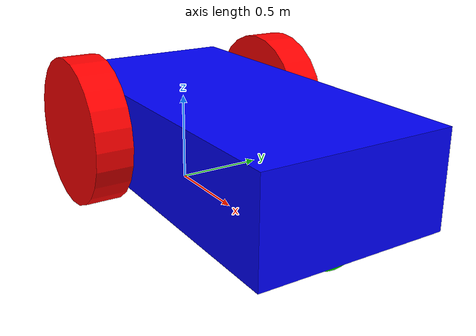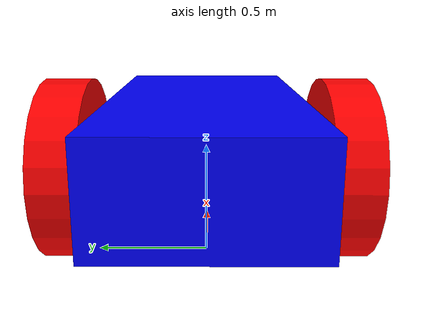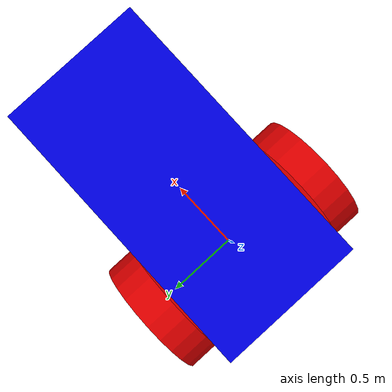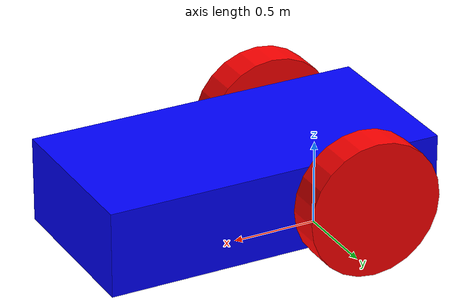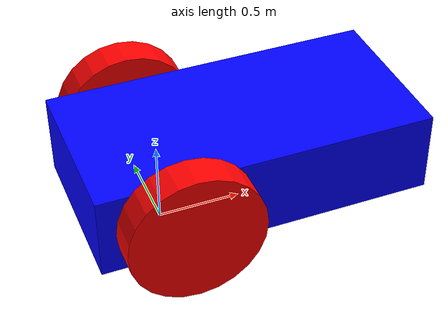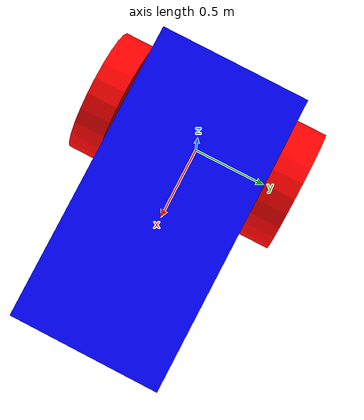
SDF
<?xml version="1.0" encoding='utf-8'?>
<sdf version="1.8">
    <model name="blue_wheel_bot">
        <pose>0 0 0 0 0 0</pose>
        <link name="base">
            <pose>0.5 0 0.4 0 0 0</pose>
            <inertial> <!-- modelin ataletini ve kütle bilgileri girilir -->
                <mass>1.14395</mass>
                <inertia>
                    <ixx>0.095329</ixx>
                    <ixy>0</ixy>
                    <ixz>0</ixz>
                    <iyy>0.381317</iyy>
                    <iyz>0</iyz>
                    <izz>0.476646</izz>
                </inertia>
            </inertial>
            <visual name='visual'>
                <geometry>
                    <box>
                        <size>2.0 1.0 0.5</size>
                    </box>
                </geometry>
                <material>
                    <ambient>0.0 0.0 1.0 1</ambient>
                    <diffuse>0.0 0.0 1.0 1</diffuse>
                    <specular>0.0 0.0 1.0 1</specular>
                </material>
            </visual>
            <collision name='collision'>
                <geometry>
                    <box>
                        <size>2.0 1.0 0.5</size>
                    </box>
                </geometry>
            </collision>
            <sensor name="vehicle_imu" type="imu">
                <always_on>1</always_on>
                <update_rate>100</update_rate>
                <visualize>true</visualize>
                <topic>imu</topic>
            </sensor>
            <sensor name='gpu_lidar' type='gpu_lidar'>"
                <pose>-0.5 0 0.5 0 0 0</pose>
                <topic>lidar</topic>
                <update_rate>10</update_rate>
                <ray>
                    <scan>
                        <horizontal>
                            <samples>160</samples>
                            <resolution>1</resolution>
                            <min_angle>-1.396263</min_angle>
                            <max_angle>1.396263</max_angle>
                        </horizontal>
                        <vertical>
                            <samples>1</samples>
                            <resolution>0.01</resolution>
                            <min_angle>0</min_angle>
                            <max_angle>0</max_angle>
                        </vertical>
                    </scan>
                    <range>
                        <min>0.02</min>
                        <max>5.0</max>
                        <resolution>0.01</resolution>
                    </range>
                </ray>
                <always_on>1</always_on>
                <visualize>true</visualize>
            </sensor>
        </link>

        <link name='left_wheel'>
            <pose relative_to="base">-0.5 0.6 0 -1.5707 0 0</pose>
            <inertial>
                <mass>1</mass>
                <inertia>
                    <ixx>0.043333</ixx>
                    <ixy>0</ixy>
                    <ixz>0</ixz>
                    <iyy>0.043333</iyy>
                    <iyz>0</iyz>
                    <izz>0.08</izz>
                </inertia>
            </inertial>
            <visual name='visual'>
                <geometry>
                    <cylinder>
                        <radius>0.4</radius>
                        <length>0.2</length>
                    </cylinder>
                </geometry>
                <material>
                    <ambient>1.0 0.0 0.0 1</ambient>
                    <diffuse>1.0 0.0 0.0 1</diffuse>
                    <specular>1.0 0.0 0.0 1</specular>
                </material>
            </visual>
            <collision name='collision'>
                <geometry>
                    <cylinder>
                        <radius>0.4</radius>
                        <length>0.2</length>
                    </cylinder>
                </geometry>
            </collision>
        </link>

        <link name='right_wheel'>
            <pose relative_to="base">-0.5 -0.6 0 -1.5707 0 0</pose> <!--angles are in radian-->
            <inertial>
                <mass>1</mass>
                <inertia>
                    <ixx>0.043333</ixx>
                    <ixy>0</ixy>
                    <ixz>0</ixz>
                    <iyy>0.043333</iyy>
                    <iyz>0</iyz>
                    <izz>0.08</izz>
                </inertia>
            </inertial>
            <visual name='visual'>
                <geometry>
                    <cylinder>
                        <radius>0.4</radius>
                        <length>0.2</length>
                    </cylinder>
                </geometry>
                <material>
                    <ambient>1.0 0.0 0.0 1</ambient>
                    <diffuse>1.0 0.0 0.0 1</diffuse>
                    <specular>1.0 0.0 0.0 1</specular>
                </material>
            </visual>
            <collision name='collision'>
                <geometry>
                    <cylinder>
                        <radius>0.4</radius>
                        <length>0.2</length>
                    </cylinder>
                </geometry>
            </collision>
        </link>

        <link name='caster'>
            <pose relative_to='base'>0.75 0 -0.2 0 0 0</pose>
            <inertial>
                <mass>1</mass>
                <inertia>
                    <ixx>0.016</ixx>
                    <ixy>0</ixy>
                    <ixz>0</ixz>
                    <iyy>0.016</iyy>
                    <iyz>0</iyz>
                    <izz>0.016</izz>
                </inertia>
            </inertial>
            <visual name='visual'>
                <geometry>
                    <sphere>
                        <radius>0.2</radius>
                    </sphere>
                </geometry>
                <material>
                    <ambient>0.0 1 0.0 1</ambient>
                    <diffuse>0.0 1 0.0 1</diffuse>
                    <specular>0.0 1 0.0 1</specular>
                </material>
            </visual>
            <collision name='collision'>
                <geometry>
                    <sphere>
                        <radius>0.2</radius>
                    </sphere>
                </geometry>
            </collision>
        </link>

        <joint name='left_wheel_joint' type='revolute'>
            <pose relative_to='left_wheel'/>
            <parent>base</parent>
            <child>left_wheel</child>
            <axis>
                <xyz expressed_in='__model__'>0 1 0</xyz>
                <limit>
                    <lower>-1.79769e+308</lower>    <!--negative infinity-->
                    <upper>1.79769e+308</upper>     <!--positive infinity-->
                </limit>
            </axis>
        </joint>
        <joint name='right_wheel_joint' type='revolute'>
            <pose relative_to='right_wheel'/>
            <parent>base</parent>
            <child>right_wheel</child>
            <axis>
                <xyz expressed_in='__model__'>0 1 0</xyz>
                <limit>
                    <lower>-1.79769e+308</lower>    <!--negative infinity-->
                    <upper>1.79769e+308</upper>     <!--positive infinity-->
                </limit>
            </axis>
        </joint>
        <joint name='caster_wheel' type='ball'>
            <parent>base</parent>
            <child>caster</child>
        </joint>

        <plugin filename="gz-sim-diff-drive-system" name="gz::sim::systems::DiffDrive">
            <left_joint>left_wheel_joint</left_joint>
            <right_joint>right_wheel_joint</right_joint>
            <wheel_separation>1.2</wheel_separation>
            <wheel_radius>0.4</wheel_radius>
            <odom_publish_frequency>1</odom_publish_frequency>
            <topic>cmd_vel</topic>
        </plugin>

        <!-- Belirtilen veri ğirişi sağlandığında çalışır.-->
        <plugin filename="gz-sim-triggered-publisher-system" name="gz::sim::systems::TriggeredPublisher">
            <input type="gz.msgs.Int32" topic="/keyboard/keypress">
            <match field="data">16777235</match>
            </input>
            <output type="gz.msgs.Twist" topic="/cmd_vel">
                linear: {x: 0.5}, angular: {z: 0.0}
            </output>
        </plugin>
        <!-- Moving Backward-->
        <plugin filename="gz-sim-triggered-publisher-system" name="gz::sim::systems::TriggeredPublisher">
            <input type="gz.msgs.Int32" topic="/keyboard/keypress">
            <match field="data">16777237</match>
            </input>
            <output type="gz.msgs.Twist" topic="/cmd_vel">
                linear: {x: -0.5}, angular: {z: 0.0}
            </output>
        </plugin>

        <plugin filename="gz-sim-touchplugin-system" name="gz::sim::systems::TouchPlugin">
            <target>blue_wheel_bot</target>
            <namespace>wall</namespace>
            <time>0.001</time>
            <enabled>true</enabled>
        </plugin>

        <plugin filename="gz-sim-triggered-publisher-system" name="gz::sim::systems::TriggeredPublisher">
            <input type="gz.msgs.Boolean" topic="/wall/touched"></input>
            <output>linear: { x: 0.0 }, angular: { z: 0.0 } </output>
        </plugin>

    </model>
</sdf>
